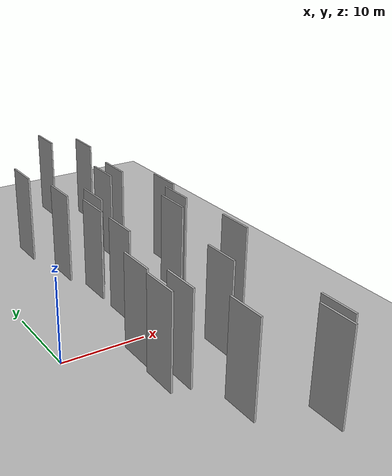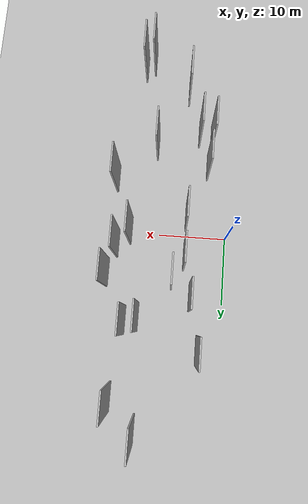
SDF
<?xml version="1.0" encoding="utf-8"?>

<sdf version="1.6">

   <world name="default">

      <gui fullscreen="0">

         <camera name="user_camera">

            <pose>-15 0 4.57585 0 0 0</pose>

            <view_controller>orbit</view_controller>

         </camera>

      </gui>

      <scene>

         <sky>

           <clouds>

             <speed>12</speed>

           </clouds>

         </sky>

         <ambient>0.4 0.4 0.4 1</ambient>

         <background>0.7 0.7 0.7 1</background>

         <shadows>1</shadows>

      </scene>

      <gravity>0 0 -9.8066</gravity>

      <magnetic_field>6e-06 2.3e-05 -4.2e-05</magnetic_field>

      <physics default="0" name="default_physics" type="ode">

         <ode>

            <solver>

               <type>quick</type>

               <iters>10</iters>

               <sor>1.0</sor>

               <use_dynamic_moi_rescaling>0</use_dynamic_moi_rescaling>

            </solver>

            <constraints>

               <cfm>0</cfm>

               <erp>0.2</erp>

               <contact_max_correcting_vel>100</contact_max_correcting_vel>

               <contact_surface_layer>0.001</contact_surface_layer>

            </constraints>

         </ode>

         <max_step_size>0.004</max_step_size>

         <real_time_factor>1</real_time_factor>

         <real_time_update_rate>250</real_time_update_rate>

      </physics>

      <light name="sun" type="directional">

         <cast_shadows>1</cast_shadows>

         <pose>0 0 10 0 0 0</pose>

         <diffuse>0.8 0.8 0.8 1</diffuse>

         <specular>0.2 0.2 0.2 1</specular>

         <attenuation>

            <range>1000</range>

            <constant>0.9</constant>

            <linear>0.01</linear>

            <quadratic>0.001</quadratic>

         </attenuation>

         <direction>-0.5 0.1 -0.9</direction>

      </light>

      <include>

         <name>ground_plane_1</name>

         <uri>model://HANNAS_ground_plane</uri>

         <pose>0 0 0  0 0 0</pose>

      </include>

      <include>

         <name>ground_plane_2</name>

         <uri>model://HANNAS_ground_plane</uri>

         <pose>100 0 0  0 0 0</pose>

      </include>

      <model name="HANNAS_wall_1">

         <static>1</static>

         <pose frame="">3.4930 -9.6182 5.0 0.000000 0.000000 1.570796</pose>

         <link name="link">

            <pose frame="">0 0 5.00 0 0 0</pose>

            <collision name="collision">

               <geometry>

                  <box>

                     <size>4.00 0.2 10.00</size>

                  </box>

               </geometry>

               <max_contacts>10</max_contacts>

               <surface>

                  <contact>

                     <ode/>

                  </contact>

                  <bounce/>

                  <friction>

                     <torsional>

                        <ode/>

                     </torsional>

                     <ode/>

                  </friction>

               </surface>

            </collision>

            <visual name="visual">

               <cast_shadows>0</cast_shadows>

               <geometry>

                  <box>

                     <size>4.00 0.2 10.00</size>

                  </box>

               </geometry>

               <material>

                  <script>

                     <uri>model://HANNAS_wall/materials/scripts</uri>

                     <uri>model://HANNAS_wall/materials/textures</uri>

                     <name>vrc/HANNAS_wall</name>

                  </script>

               </material>

            </visual>

            <self_collide>0</self_collide>

            <enable_wind>0</enable_wind>

            <kinematic>0</kinematic>

         </link>

      </model>

      <model name="HANNAS_wall_2">

         <static>1</static>

         <pose frame="">12.1134 -25.7964 5.0 0.000000 0.000000 1.570796</pose>

         <link name="link">

            <pose frame="">0 0 5.00 0 0 0</pose>

            <collision name="collision">

               <geometry>

                  <box>

                     <size>4.00 0.2 10.00</size>

                  </box>

               </geometry>

               <max_contacts>10</max_contacts>

               <surface>

                  <contact>

                     <ode/>

                  </contact>

                  <bounce/>

                  <friction>

                     <torsional>

                        <ode/>

                     </torsional>

                     <ode/>

                  </friction>

               </surface>

            </collision>

            <visual name="visual">

               <cast_shadows>0</cast_shadows>

               <geometry>

                  <box>

                     <size>4.00 0.2 10.00</size>

                  </box>

               </geometry>

               <material>

                  <script>

                     <uri>model://HANNAS_wall/materials/scripts</uri>

                     <uri>model://HANNAS_wall/materials/textures</uri>

                     <name>vrc/HANNAS_wall</name>

                  </script>

               </material>

            </visual>

            <self_collide>0</self_collide>

            <enable_wind>0</enable_wind>

            <kinematic>0</kinematic>

         </link>

      </model>

      <model name="HANNAS_wall_3">

         <static>1</static>

         <pose frame="">4.8987 -14.6306 5.0 0.000000 0.000000 1.570796</pose>

         <link name="link">

            <pose frame="">0 0 5.00 0 0 0</pose>

            <collision name="collision">

               <geometry>

                  <box>

                     <size>4.00 0.2 10.00</size>

                  </box>

               </geometry>

               <max_contacts>10</max_contacts>

               <surface>

                  <contact>

                     <ode/>

                  </contact>

                  <bounce/>

                  <friction>

                     <torsional>

                        <ode/>

                     </torsional>

                     <ode/>

                  </friction>

               </surface>

            </collision>

            <visual name="visual">

               <cast_shadows>0</cast_shadows>

               <geometry>

                  <box>

                     <size>4.00 0.2 10.00</size>

                  </box>

               </geometry>

               <material>

                  <script>

                     <uri>model://HANNAS_wall/materials/scripts</uri>

                     <uri>model://HANNAS_wall/materials/textures</uri>

                     <name>vrc/HANNAS_wall</name>

                  </script>

               </material>

            </visual>

            <self_collide>0</self_collide>

            <enable_wind>0</enable_wind>

            <kinematic>0</kinematic>

         </link>

      </model>

      <model name="HANNAS_wall_4">

         <static>1</static>

         <pose frame="">15.0310 23.2108 5.0 0.000000 0.000000 1.570796</pose>

         <link name="link">

            <pose frame="">0 0 5.00 0 0 0</pose>

            <collision name="collision">

               <geometry>

                  <box>

                     <size>4.00 0.2 10.00</size>

                  </box>

               </geometry>

               <max_contacts>10</max_contacts>

               <surface>

                  <contact>

                     <ode/>

                  </contact>

                  <bounce/>

                  <friction>

                     <torsional>

                        <ode/>

                     </torsional>

                     <ode/>

                  </friction>

               </surface>

            </collision>

            <visual name="visual">

               <cast_shadows>0</cast_shadows>

               <geometry>

                  <box>

                     <size>4.00 0.2 10.00</size>

                  </box>

               </geometry>

               <material>

                  <script>

                     <uri>model://HANNAS_wall/materials/scripts</uri>

                     <uri>model://HANNAS_wall/materials/textures</uri>

                     <name>vrc/HANNAS_wall</name>

                  </script>

               </material>

            </visual>

            <self_collide>0</self_collide>

            <enable_wind>0</enable_wind>

            <kinematic>0</kinematic>

         </link>

      </model>

      <model name="HANNAS_wall_5">

         <static>1</static>

         <pose frame="">3.1065 -14.2138 5.0 0.000000 0.000000 1.570796</pose>

         <link name="link">

            <pose frame="">0 0 5.00 0 0 0</pose>

            <collision name="collision">

               <geometry>

                  <box>

                     <size>4.00 0.2 10.00</size>

                  </box>

               </geometry>

               <max_contacts>10</max_contacts>

               <surface>

                  <contact>

                     <ode/>

                  </contact>

                  <bounce/>

                  <friction>

                     <torsional>

                        <ode/>

                     </torsional>

                     <ode/>

                  </friction>

               </surface>

            </collision>

            <visual name="visual">

               <cast_shadows>0</cast_shadows>

               <geometry>

                  <box>

                     <size>4.00 0.2 10.00</size>

                  </box>

               </geometry>

               <material>

                  <script>

                     <uri>model://HANNAS_wall/materials/scripts</uri>

                     <uri>model://HANNAS_wall/materials/textures</uri>

                     <name>vrc/HANNAS_wall</name>

                  </script>

               </material>

            </visual>

            <self_collide>0</self_collide>

            <enable_wind>0</enable_wind>

            <kinematic>0</kinematic>

         </link>

      </model>

      <model name="HANNAS_wall_6">

         <static>1</static>

         <pose frame="">11.5362 27.1328 5.0 0.000000 0.000000 1.570796</pose>

         <link name="link">

            <pose frame="">0 0 5.00 0 0 0</pose>

            <collision name="collision">

               <geometry>

                  <box>

                     <size>4.00 0.2 10.00</size>

                  </box>

               </geometry>

               <max_contacts>10</max_contacts>

               <surface>

                  <contact>

                     <ode/>

                  </contact>

                  <bounce/>

                  <friction>

                     <torsional>

                        <ode/>

                     </torsional>

                     <ode/>

                  </friction>

               </surface>

            </collision>

            <visual name="visual">

               <cast_shadows>0</cast_shadows>

               <geometry>

                  <box>

                     <size>4.00 0.2 10.00</size>

                  </box>

               </geometry>

               <material>

                  <script>

                     <uri>model://HANNAS_wall/materials/scripts</uri>

                     <uri>model://HANNAS_wall/materials/textures</uri>

                     <name>vrc/HANNAS_wall</name>

                  </script>

               </material>

            </visual>

            <self_collide>0</self_collide>

            <enable_wind>0</enable_wind>

            <kinematic>0</kinematic>

         </link>

      </model>

      <model name="HANNAS_wall_7">

         <static>1</static>

         <pose frame="">16.7104 6.6749 5.0 0.000000 0.000000 1.570796</pose>

         <link name="link">

            <pose frame="">0 0 5.00 0 0 0</pose>

            <collision name="collision">

               <geometry>

                  <box>

                     <size>4.00 0.2 10.00</size>

                  </box>

               </geometry>

               <max_contacts>10</max_contacts>

               <surface>

                  <contact>

                     <ode/>

                  </contact>

                  <bounce/>

                  <friction>

                     <torsional>

                        <ode/>

                     </torsional>

                     <ode/>

                  </friction>

               </surface>

            </collision>

            <visual name="visual">

               <cast_shadows>0</cast_shadows>

               <geometry>

                  <box>

                     <size>4.00 0.2 10.00</size>

                  </box>

               </geometry>

               <material>

                  <script>

                     <uri>model://HANNAS_wall/materials/scripts</uri>

                     <uri>model://HANNAS_wall/materials/textures</uri>

                     <name>vrc/HANNAS_wall</name>

                  </script>

               </material>

            </visual>

            <self_collide>0</self_collide>

            <enable_wind>0</enable_wind>

            <kinematic>0</kinematic>

         </link>

      </model>

      <model name="HANNAS_wall_8">

         <static>1</static>

         <pose frame="">16.2765 -7.0694 5.0 0.000000 0.000000 1.570796</pose>

         <link name="link">

            <pose frame="">0 0 5.00 0 0 0</pose>

            <collision name="collision">

               <geometry>

                  <box>

                     <size>4.00 0.2 10.00</size>

                  </box>

               </geometry>

               <max_contacts>10</max_contacts>

               <surface>

                  <contact>

                     <ode/>

                  </contact>

                  <bounce/>

                  <friction>

                     <torsional>

                        <ode/>

                     </torsional>

                     <ode/>

                  </friction>

               </surface>

            </collision>

            <visual name="visual">

               <cast_shadows>0</cast_shadows>

               <geometry>

                  <box>

                     <size>4.00 0.2 10.00</size>

                  </box>

               </geometry>

               <material>

                  <script>

                     <uri>model://HANNAS_wall/materials/scripts</uri>

                     <uri>model://HANNAS_wall/materials/textures</uri>

                     <name>vrc/HANNAS_wall</name>

                  </script>

               </material>

            </visual>

            <self_collide>0</self_collide>

            <enable_wind>0</enable_wind>

            <kinematic>0</kinematic>

         </link>

      </model>

      <model name="HANNAS_wall_9">

         <static>1</static>

         <pose frame="">6.1859 3.8183 5.0 0.000000 0.000000 1.570796</pose>

         <link name="link">

            <pose frame="">0 0 5.00 0 0 0</pose>

            <collision name="collision">

               <geometry>

                  <box>

                     <size>4.00 0.2 10.00</size>

                  </box>

               </geometry>

               <max_contacts>10</max_contacts>

               <surface>

                  <contact>

                     <ode/>

                  </contact>

                  <bounce/>

                  <friction>

                     <torsional>

                        <ode/>

                     </torsional>

                     <ode/>

                  </friction>

               </surface>

            </collision>

            <visual name="visual">

               <cast_shadows>0</cast_shadows>

               <geometry>

                  <box>

                     <size>4.00 0.2 10.00</size>

                  </box>

               </geometry>

               <material>

                  <script>

                     <uri>model://HANNAS_wall/materials/scripts</uri>

                     <uri>model://HANNAS_wall/materials/textures</uri>

                     <name>vrc/HANNAS_wall</name>

                  </script>

               </material>

            </visual>

            <self_collide>0</self_collide>

            <enable_wind>0</enable_wind>

            <kinematic>0</kinematic>

         </link>

      </model>

      <model name="HANNAS_wall_10">

         <static>1</static>

         <pose frame="">10.8411 -12.2583 5.0 0.000000 0.000000 1.570796</pose>

         <link name="link">

            <pose frame="">0 0 5.00 0 0 0</pose>

            <collision name="collision">

               <geometry>

                  <box>

                     <size>4.00 0.2 10.00</size>

                  </box>

               </geometry>

               <max_contacts>10</max_contacts>

               <surface>

                  <contact>

                     <ode/>

                  </contact>

                  <bounce/>

                  <friction>

                     <torsional>

                        <ode/>

                     </torsional>

                     <ode/>

                  </friction>

               </surface>

            </collision>

            <visual name="visual">

               <cast_shadows>0</cast_shadows>

               <geometry>

                  <box>

                     <size>4.00 0.2 10.00</size>

                  </box>

               </geometry>

               <material>

                  <script>

                     <uri>model://HANNAS_wall/materials/scripts</uri>

                     <uri>model://HANNAS_wall/materials/textures</uri>

                     <name>vrc/HANNAS_wall</name>

                  </script>

               </material>

            </visual>

            <self_collide>0</self_collide>

            <enable_wind>0</enable_wind>

            <kinematic>0</kinematic>

         </link>

      </model>

      <model name="HANNAS_wall_11">

         <static>1</static>

         <pose frame="">12.0717 12.5254 5.0 0.000000 0.000000 1.570796</pose>

         <link name="link">

            <pose frame="">0 0 5.00 0 0 0</pose>

            <collision name="collision">

               <geometry>

                  <box>

                     <size>4.00 0.2 10.00</size>

                  </box>

               </geometry>

               <max_contacts>10</max_contacts>

               <surface>

                  <contact>

                     <ode/>

                  </contact>

                  <bounce/>

                  <friction>

                     <torsional>

                        <ode/>

                     </torsional>

                     <ode/>

                  </friction>

               </surface>

            </collision>

            <visual name="visual">

               <cast_shadows>0</cast_shadows>

               <geometry>

                  <box>

                     <size>4.00 0.2 10.00</size>

                  </box>

               </geometry>

               <material>

                  <script>

                     <uri>model://HANNAS_wall/materials/scripts</uri>

                     <uri>model://HANNAS_wall/materials/textures</uri>

                     <name>vrc/HANNAS_wall</name>

                  </script>

               </material>

            </visual>

            <self_collide>0</self_collide>

            <enable_wind>0</enable_wind>

            <kinematic>0</kinematic>

         </link>

      </model>

      <model name="HANNAS_wall_12">

         <static>1</static>

         <pose frame="">6.7344 -21.1685 5.0 0.000000 0.000000 1.570796</pose>

         <link name="link">

            <pose frame="">0 0 5.00 0 0 0</pose>

            <collision name="collision">

               <geometry>

                  <box>

                     <size>4.00 0.2 10.00</size>

                  </box>

               </geometry>

               <max_contacts>10</max_contacts>

               <surface>

                  <contact>

                     <ode/>

                  </contact>

                  <bounce/>

                  <friction>

                     <torsional>

                        <ode/>

                     </torsional>

                     <ode/>

                  </friction>

               </surface>

            </collision>

            <visual name="visual">

               <cast_shadows>0</cast_shadows>

               <geometry>

                  <box>

                     <size>4.00 0.2 10.00</size>

                  </box>

               </geometry>

               <material>

                  <script>

                     <uri>model://HANNAS_wall/materials/scripts</uri>

                     <uri>model://HANNAS_wall/materials/textures</uri>

                     <name>vrc/HANNAS_wall</name>

                  </script>

               </material>

            </visual>

            <self_collide>0</self_collide>

            <enable_wind>0</enable_wind>

            <kinematic>0</kinematic>

         </link>

      </model>

      <model name="HANNAS_wall_13">

         <static>1</static>

         <pose frame="">5.1119 9.4027 5.0 0.000000 0.000000 1.570796</pose>

         <link name="link">

            <pose frame="">0 0 5.00 0 0 0</pose>

            <collision name="collision">

               <geometry>

                  <box>

                     <size>4.00 0.2 10.00</size>

                  </box>

               </geometry>

               <max_contacts>10</max_contacts>

               <surface>

                  <contact>

                     <ode/>

                  </contact>

                  <bounce/>

                  <friction>

                     <torsional>

                        <ode/>

                     </torsional>

                     <ode/>

                  </friction>

               </surface>

            </collision>

            <visual name="visual">

               <cast_shadows>0</cast_shadows>

               <geometry>

                  <box>

                     <size>4.00 0.2 10.00</size>

                  </box>

               </geometry>

               <material>

                  <script>

                     <uri>model://HANNAS_wall/materials/scripts</uri>

                     <uri>model://HANNAS_wall/materials/textures</uri>

                     <name>vrc/HANNAS_wall</name>

                  </script>

               </material>

            </visual>

            <self_collide>0</self_collide>

            <enable_wind>0</enable_wind>

            <kinematic>0</kinematic>

         </link>

      </model>

      <model name="HANNAS_wall_14">

         <static>1</static>

         <pose frame="">7.7117 6.5904 5.0 0.000000 0.000000 1.570796</pose>

         <link name="link">

            <pose frame="">0 0 5.00 0 0 0</pose>

            <collision name="collision">

               <geometry>

                  <box>

                     <size>4.00 0.2 10.00</size>

                  </box>

               </geometry>

               <max_contacts>10</max_contacts>

               <surface>

                  <contact>

                     <ode/>

                  </contact>

                  <bounce/>

                  <friction>

                     <torsional>

                        <ode/>

                     </torsional>

                     <ode/>

                  </friction>

               </surface>

            </collision>

            <visual name="visual">

               <cast_shadows>0</cast_shadows>

               <geometry>

                  <box>

                     <size>4.00 0.2 10.00</size>

                  </box>

               </geometry>

               <material>

                  <script>

                     <uri>model://HANNAS_wall/materials/scripts</uri>

                     <uri>model://HANNAS_wall/materials/textures</uri>

                     <name>vrc/HANNAS_wall</name>

                  </script>

               </material>

            </visual>

            <self_collide>0</self_collide>

            <enable_wind>0</enable_wind>

            <kinematic>0</kinematic>

         </link>

      </model>

      <model name="HANNAS_wall_15">

         <static>1</static>

         <pose frame="">13.8546 13.0444 5.0 0.000000 0.000000 1.570796</pose>

         <link name="link">

            <pose frame="">0 0 5.00 0 0 0</pose>

            <collision name="collision">

               <geometry>

                  <box>

                     <size>4.00 0.2 10.00</size>

                  </box>

               </geometry>

               <max_contacts>10</max_contacts>

               <surface>

                  <contact>

                     <ode/>

                  </contact>

                  <bounce/>

                  <friction>

                     <torsional>

                        <ode/>

                     </torsional>

                     <ode/>

                  </friction>

               </surface>

            </collision>

            <visual name="visual">

               <cast_shadows>0</cast_shadows>

               <geometry>

                  <box>

                     <size>4.00 0.2 10.00</size>

                  </box>

               </geometry>

               <material>

                  <script>

                     <uri>model://HANNAS_wall/materials/scripts</uri>

                     <uri>model://HANNAS_wall/materials/textures</uri>

                     <name>vrc/HANNAS_wall</name>

                  </script>

               </material>

            </visual>

            <self_collide>0</self_collide>

            <enable_wind>0</enable_wind>

            <kinematic>0</kinematic>

         </link>

      </model>

      <model name="HANNAS_wall_16">

         <static>1</static>

         <pose frame="">13.3080 -24.6456 5.0 0.000000 0.000000 1.570796</pose>

         <link name="link">

            <pose frame="">0 0 5.00 0 0 0</pose>

            <collision name="collision">

               <geometry>

                  <box>

                     <size>4.00 0.2 10.00</size>

                  </box>

               </geometry>

               <max_contacts>10</max_contacts>

               <surface>

                  <contact>

                     <ode/>

                  </contact>

                  <bounce/>

                  <friction>

                     <torsional>

                        <ode/>

                     </torsional>

                     <ode/>

                  </friction>

               </surface>

            </collision>

            <visual name="visual">

               <cast_shadows>0</cast_shadows>

               <geometry>

                  <box>

                     <size>4.00 0.2 10.00</size>

                  </box>

               </geometry>

               <material>

                  <script>

                     <uri>model://HANNAS_wall/materials/scripts</uri>

                     <uri>model://HANNAS_wall/materials/textures</uri>

                     <name>vrc/HANNAS_wall</name>

                  </script>

               </material>

            </visual>

            <self_collide>0</self_collide>

            <enable_wind>0</enable_wind>

            <kinematic>0</kinematic>

         </link>

      </model>

      <model name="HANNAS_wall_17">

         <static>1</static>

         <pose frame="">6.1787 -1.8883 5.0 0.000000 0.000000 1.570796</pose>

         <link name="link">

            <pose frame="">0 0 5.00 0 0 0</pose>

            <collision name="collision">

               <geometry>

                  <box>

                     <size>4.00 0.2 10.00</size>

                  </box>

               </geometry>

               <max_contacts>10</max_contacts>

               <surface>

                  <contact>

                     <ode/>

                  </contact>

                  <bounce/>

                  <friction>

                     <torsional>

                        <ode/>

                     </torsional>

                     <ode/>

                  </friction>

               </surface>

            </collision>

            <visual name="visual">

               <cast_shadows>0</cast_shadows>

               <geometry>

                  <box>

                     <size>4.00 0.2 10.00</size>

                  </box>

               </geometry>

               <material>

                  <script>

                     <uri>model://HANNAS_wall/materials/scripts</uri>

                     <uri>model://HANNAS_wall/materials/textures</uri>

                     <name>vrc/HANNAS_wall</name>

                  </script>

               </material>

            </visual>

            <self_collide>0</self_collide>

            <enable_wind>0</enable_wind>

            <kinematic>0</kinematic>

         </link>

      </model>

      <model name="HANNAS_wall_18">

         <static>1</static>

         <pose frame="">15.5854 2.4775 5.0 0.000000 0.000000 1.570796</pose>

         <link name="link">

            <pose frame="">0 0 5.00 0 0 0</pose>

            <collision name="collision">

               <geometry>

                  <box>

                     <size>4.00 0.2 10.00</size>

                  </box>

               </geometry>

               <max_contacts>10</max_contacts>

               <surface>

                  <contact>

                     <ode/>

                  </contact>

                  <bounce/>

                  <friction>

                     <torsional>

                        <ode/>

                     </torsional>

                     <ode/>

                  </friction>

               </surface>

            </collision>

            <visual name="visual">

               <cast_shadows>0</cast_shadows>

               <geometry>

                  <box>

                     <size>4.00 0.2 10.00</size>

                  </box>

               </geometry>

               <material>

                  <script>

                     <uri>model://HANNAS_wall/materials/scripts</uri>

                     <uri>model://HANNAS_wall/materials/textures</uri>

                     <name>vrc/HANNAS_wall</name>

                  </script>

               </material>

            </visual>

            <self_collide>0</self_collide>

            <enable_wind>0</enable_wind>

            <kinematic>0</kinematic>

         </link>

      </model>

      <model name="HANNAS_wall_19">

         <static>1</static>

         <pose frame="">3.7999 16.4916 5.0 0.000000 0.000000 1.570796</pose>

         <link name="link">

            <pose frame="">0 0 5.00 0 0 0</pose>

            <collision name="collision">

               <geometry>

                  <box>

                     <size>4.00 0.2 10.00</size>

                  </box>

               </geometry>

               <max_contacts>10</max_contacts>

               <surface>

                  <contact>

                     <ode/>

                  </contact>

                  <bounce/>

                  <friction>

                     <torsional>

                        <ode/>

                     </torsional>

                     <ode/>

                  </friction>

               </surface>

            </collision>

            <visual name="visual">

               <cast_shadows>0</cast_shadows>

               <geometry>

                  <box>

                     <size>4.00 0.2 10.00</size>

                  </box>

               </geometry>

               <material>

                  <script>

                     <uri>model://HANNAS_wall/materials/scripts</uri>

                     <uri>model://HANNAS_wall/materials/textures</uri>

                     <name>vrc/HANNAS_wall</name>

                  </script>

               </material>

            </visual>

            <self_collide>0</self_collide>

            <enable_wind>0</enable_wind>

            <kinematic>0</kinematic>

         </link>

      </model>

      <model name="HANNAS_wall_20">

         <static>1</static>

         <pose frame="">13.8479 0.5052 5.0 0.000000 0.000000 1.570796</pose>

         <link name="link">

            <pose frame="">0 0 5.00 0 0 0</pose>

            <collision name="collision">

               <geometry>

                  <box>

                     <size>4.00 0.2 10.00</size>

                  </box>

               </geometry>

               <max_contacts>10</max_contacts>

               <surface>

                  <contact>

                     <ode/>

                  </contact>

                  <bounce/>

                  <friction>

                     <torsional>

                        <ode/>

                     </torsional>

                     <ode/>

                  </friction>

               </surface>

            </collision>

            <visual name="visual">

               <cast_shadows>0</cast_shadows>

               <geometry>

                  <box>

                     <size>4.00 0.2 10.00</size>

                  </box>

               </geometry>

               <material>

                  <script>

                     <uri>model://HANNAS_wall/materials/scripts</uri>

                     <uri>model://HANNAS_wall/materials/textures</uri>

                     <name>vrc/HANNAS_wall</name>

                  </script>

               </material>

            </visual>

            <self_collide>0</self_collide>

            <enable_wind>0</enable_wind>

            <kinematic>0</kinematic>

         </link>

      </model>

   </world>

</sdf>

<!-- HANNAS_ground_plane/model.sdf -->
<sdf version="1.4">
<model name="HANNAS_ground_plane">
  <static>true</static>
    <link name="link">
      <collision name="collision">
        <geometry>
          <plane>
            <normal>0 0 1</normal>
            <size>1000 1000</size>
          </plane>
        </geometry>
        <surface>
          <friction>
            <ode>
              <mu>100</mu>
              <mu2>50</mu2>
            </ode>
          </friction>
        </surface>
      </collision>
      <visual name="visual">
        <cast_shadows>false</cast_shadows>
        <geometry>
          <plane>
            <normal>0 0 1</normal>
            <size>1000 1000</size>
          </plane>
        </geometry>
        <material>
          <script>
            <uri>model://HANNAS_ground_plane/materials/scripts/HANNAS_ground_plane.material</uri>
	    <uri>model://HANNAS_ground_plane/materials/textures</uri>
            <name>HANNASGroundPlane/Image</name>
          </script>
        </material>
      </visual>
    </link>
  </model>
</sdf>
